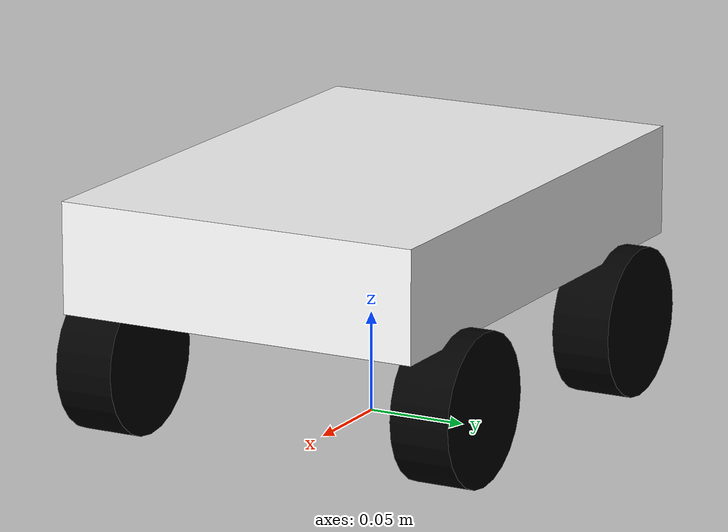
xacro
<?xml version="1.0" ?>
<robot name="wheeltec_robot" xmlns:xacro="http://www.ros.org/wiki/xacro">

    <!-- 定義材質 -->
    <xacro:property name="color_white" value="1 1 1 1"/>
    <xacro:property name="color_black" value="0 0 0 1"/>

    <!-- 定義基本參數 -->
    <xacro:property name="base_link_size" value="0.27 0.185 0.055"/>
    <xacro:property name="wheel_radius" value="0.0375"/>
    <xacro:property name="wheel_length" value="0.03"/>

    <!-- 定義基底連接 -->
    <link name="base_link">
        <visual>
            <origin xyz="0 0 0.0975" rpy="0 0 0" />
            <geometry>
                <box size="${base_link_size}"/>
            </geometry>
            <material name="white">
                <color rgba="${color_white}"/>
            </material>
        </visual>
    </link>

    <!-- 左輪 -->
    <xacro:macro name="wheel_joint" params="joint_name parent_link child_link joint_origin">
        <joint name="${joint_name}" type="continuous">
            <origin xyz="${joint_origin}" rpy="1.57 0 0"/>
            <parent link="${parent_link}"/>
            <child link="${child_link}"/>
            <axis xyz="0 1 0"/>
        </joint>

        <link name="${child_link}">
            <visual>
                <origin xyz="0 0 0" rpy="0 0 0" />
                <geometry>
                    <cylinder radius="${wheel_radius}" length="${wheel_length}"/>
                </geometry>
                <material name="black">
                    <color rgba="${color_black}"/>
                </material>
            </visual>
        </link>
    </xacro:macro>

    <!-- 使用 macro 定義所有輪子 -->
    <xacro:wheel_joint joint_name="left_wheel_joint" parent_link="base_link" child_link="left_wheel_link" joint_origin="-0.085 0.09 0.0375"/>
    <xacro:wheel_joint joint_name="right_wheel_joint" parent_link="base_link" child_link="right_wheel_link" joint_origin="-0.085 -0.09 0.0375"/>
    <xacro:wheel_joint joint_name="left_front_joint" parent_link="base_link" child_link="left_front_link" joint_origin="0.085 0.09 0.0375"/>
    <xacro:wheel_joint joint_name="right_front_joint" parent_link="base_link" child_link="right_front_link" joint_origin="0.085 -0.09 0.0375"/>

</robot>
